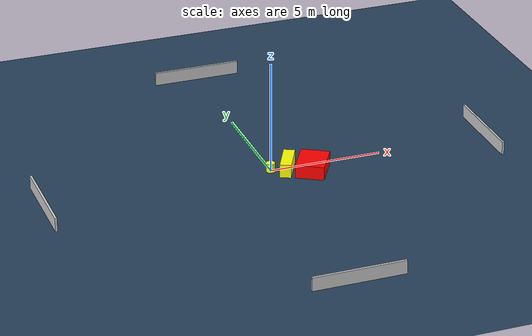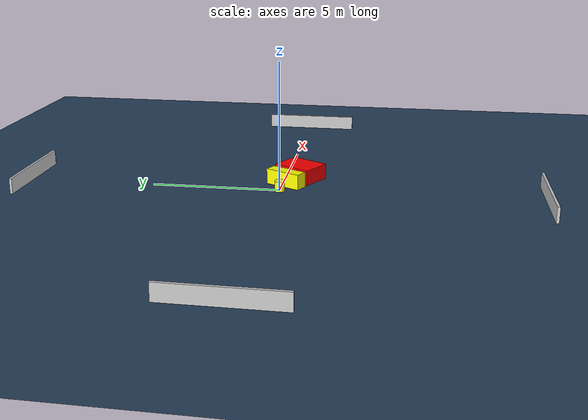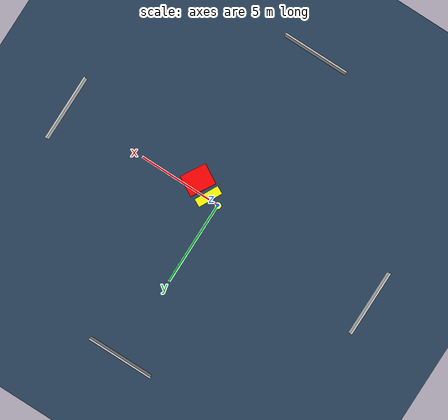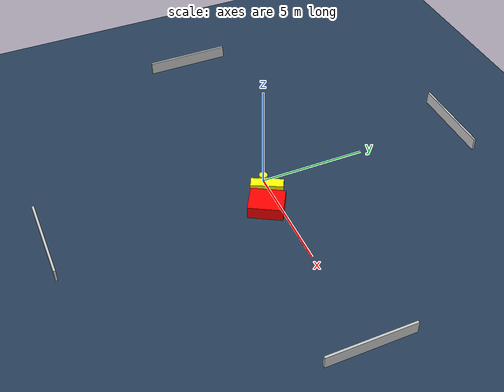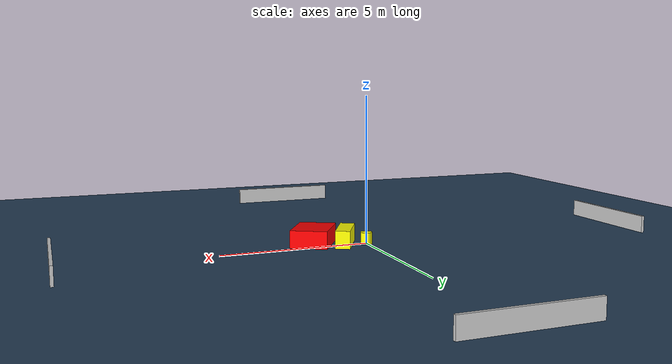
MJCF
<?xml version="1.0" ?>
<mujoco model="generated_environment">
  <option timestep="0.01" integrator="RK4" cone="elliptic"/>
  <default>
    <geom density="1"/>
  </default>
  <asset>
    <texture builtin="gradient" height="3072" name="skybox" rgb1="0.3 0.5 0.7" rgb2="0 0 0" type="skybox" width="512"/>
    <texture builtin="checker" height="300" name="groundplane" rgb1="0.2 0.3 0.4" rgb2="0.1 0.2 0.3" type="2d" width="300"/>
    <material name="groundplane" reflectance="0.2" texrepeat="5 5" texture="groundplane"/>
  </asset>
  <worldbody>
    <light dir="0 0 -1" directional="true" pos="0 0 1.5"/>
    <geom condim="3" friction="0.5 0.005 0.001" material="groundplane" name="floor" pos="0 0 0" size="0 0 0.05" type="plane"/>
    <body name="walls">
      <geom name="wall_1" condim="4" pos="-10.0 0.0 0.3" rgba="0.800000011920929 0.800000011920929 0.800000011920929 1.0" size="0.05 2.0 0.3" type="box"/>
      <geom name="wall_2" condim="4" pos="10.0 0.0 0.3" rgba="0.800000011920929 0.800000011920929 0.800000011920929 1.0" size="0.05 2.0 0.3" type="box"/>
      <geom name="wall_3" condim="4" pos="0.0 -10.0 0.3" rgba="0.800000011920929 0.800000011920929 0.800000011920929 1.0" size="2.0 0.05 0.3" type="box"/>
      <geom name="wall_4" condim="4" pos="0.0 10.0 0.3" rgba="0.800000011920929 0.800000011920929 0.800000011920929 1.0" size="2.0 0.05 0.3" type="box"/>
    </body>
    <body name="robot">
      <joint name="joint_x" type="slide" pos="0 0 0" axis="1 0 0"/>
      <joint name="joint_y" type="slide" pos="0 0 0" axis="0 1 0"/>
      <geom name="robot" type="cylinder" pos="0.0 0.0 0.2" size="0.2 0.2 0.0" mass="5.0" friction="1.0 0.005 0.0001" condim="4" rgba="1.0 1.0 0.0 1.0"/>
    </body>
    <body name="obstacle_1_movable">
      <geom name="obstacle_1_movable" condim="4" pos="0.7152466174468209 -0.13045694719854958 0.3" euler="0 0 332.95286066020043" friction="0.0 0.005 0.001" rgba="1.0 1.0 0.0 1.0" size="0.24784071069271263 0.7389674862842863 0.3" type="box" mass="0.1"/>
      <joint type="free"/>
    </body>
    <body name="obstacle_2_static">
      <geom name="obstacle_2_static" condim="4" pos="1.6909326789851313 -0.5872889628258644 0.3" euler="0 0 239.7355073833989" friction="0.0 0.005 0.001" rgba="1.0 0.0 0.0 1.0" size="0.7884916560377551 0.6282899613912046 0.3" type="box"/>
    </body>
  </worldbody>
  <actuator>
    <motor name="actuator_x" joint="joint_x" gear="1" ctrlrange="-1 1"/>
    <motor name="actuator_y" joint="joint_y" gear="1" ctrlrange="-1 1"/>
  </actuator>
</mujoco>
